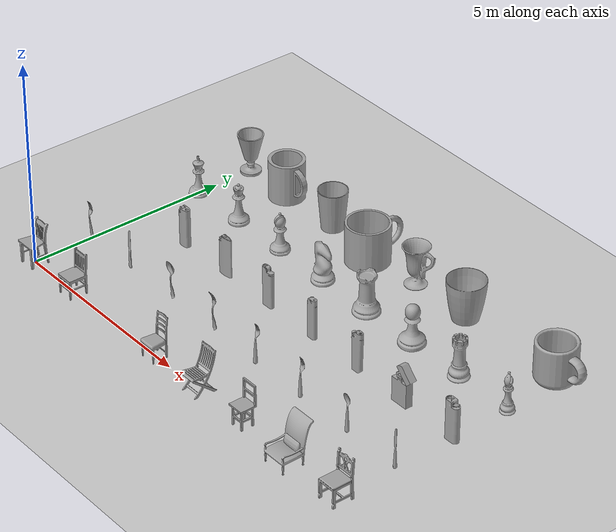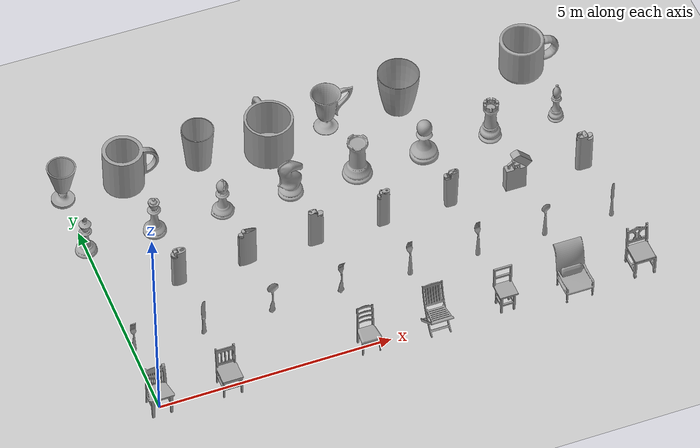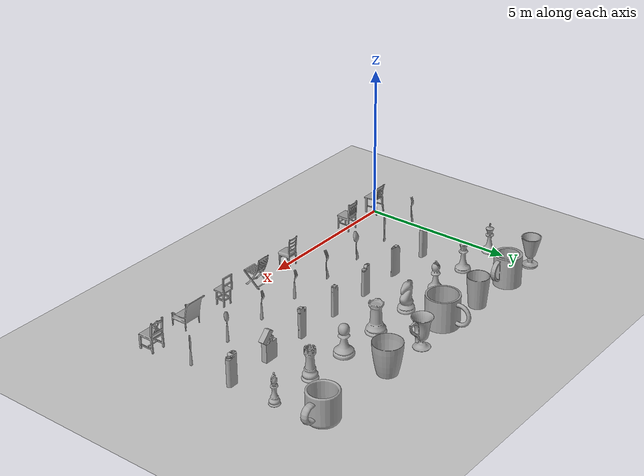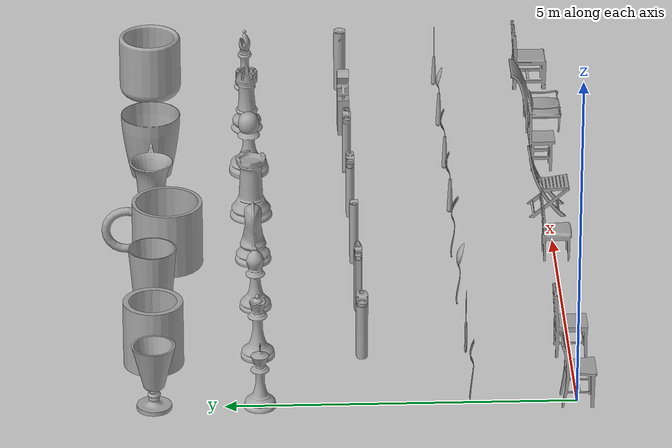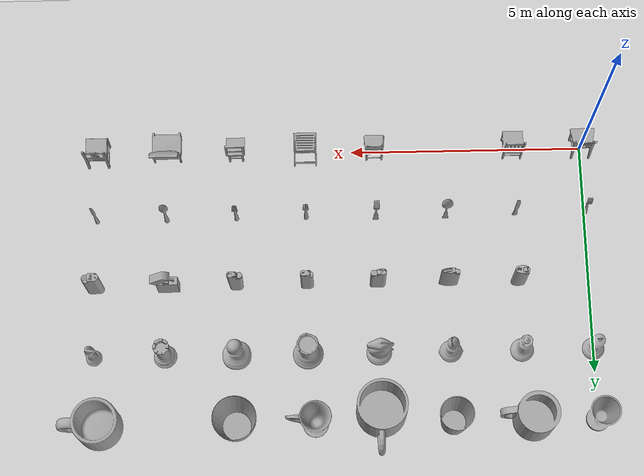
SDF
<sdf version="1.6">
 <world name="default">
  <model name="ground_plane">
   <pose>0 48.5 0 0 -0 0</pose>
   <static>1</static>
   <link name="link">
    <collision name="collision">
     <geometry><plane><normal>0 0 1</normal><size>100 100</size></plane></geometry>
     <surface>
      <contact><collide_bitmask>65535</collide_bitmask></contact>
      <friction><ode><mu>100</mu><mu2>50</mu2></ode></friction>
     </surface>
    </collision>
    <visual name="visual">
     <cast_shadows>0</cast_shadows>
     <geometry><plane><normal>0 0 1</normal><size>100 100</size></plane></geometry>
     <material>
      <script><uri>file://media/materials/scripts/gazebo.material</uri><name>Gazebo/Grey</name></script>
     </material>
    </visual>
   </link>
  </model>
  <gravity>0 0 -9.8</gravity>
  <magnetic_field>6e-06 2.3e-05 -4.2e-05</magnetic_field>
  <atmosphere type="adiabatic"/>
  <physics name="default_physics" default="0" type="ode">
   <max_step_size>0.001</max_step_size>
   <real_time_factor>1</real_time_factor>
   <real_time_update_rate>1000</real_time_update_rate>
  </physics>
  <scene><ambient>0.4 0.4 0.4 1</ambient><background>0.7 0.7 0.7 1</background><shadows>1</shadows></scene>
  <spherical_coordinates>
   <surface_model>EARTH_WGS84</surface_model>
   <latitude_deg>0</latitude_deg>
   <longitude_deg>0</longitude_deg>
   <elevation>0</elevation>
   <heading_deg>0</heading_deg>
  </spherical_coordinates>
  <model name="chair2">
   <pose>1.5 0 0.5 0 -0 0</pose>
   <static>1</static>
   <link name="body">
    <collision name="chair2-coll">
     <pose>0 0 -0.5 0 -0 0</pose>
     <geometry><mesh><uri>model://chair2/meshes/chair2.dae</uri><scale>1 1 1</scale></mesh></geometry>
    </collision>
    <visual name="chair2">
     <geometry><mesh><uri>model://chair2/meshes/chair2.dae</uri><scale>1 1 1</scale></mesh></geometry>
     <pose>0 0 -0.5 0 -0 0</pose>
    </visual>
    <velocity_decay><linear>0</linear><angular>0</angular></velocity_decay>
   </link>
  </model>
  <model name="chair4">
   <pose>4.5 0 0.5 0 -0 0</pose>
   <static>1</static>
   <link name="body">
    <collision name="chair4-coll">
     <pose>0 0 -0.5 0 -0 0</pose>
     <geometry><mesh><uri>model://chair4/meshes/chair4.dae</uri><scale>1 1 1</scale></mesh></geometry>
    </collision>
    <visual name="chair4">
     <geometry><mesh><uri>model://chair4/meshes/chair4.dae</uri><scale>1 1 1</scale></mesh></geometry>
     <pose>0 0 -0.5 0 -0 0</pose>
    </visual>
    <velocity_decay><linear>0</linear><angular>0</angular></velocity_decay>
   </link>
  </model>
  <model name="chair5">
   <pose>6 0 0.5 0 -0 0</pose>
   <static>1</static>
   <link name="body">
    <collision name="chair5-coll">
     <pose>0 0 -0.5 0 -0 0</pose>
     <geometry><mesh><uri>model://chair5/meshes/chair5.dae</uri><scale>1 1 1</scale></mesh></geometry>
    </collision>
    <visual name="chair5">
     <geometry><mesh><uri>model://chair5/meshes/chair5.dae</uri><scale>1 1 1</scale></mesh></geometry>
     <pose>0 0 -0.5 0 -0 0</pose>
    </visual>
    <velocity_decay><linear>0</linear><angular>0</angular></velocity_decay>
   </link>
  </model>
  <model name="chair1">
   <link name="body">
    <velocity_decay><linear>0</linear><angular>0</angular></velocity_decay>
    <inertial>
     <mass>1</mass>
     <inertia><ixx>1</ixx><ixy>0</ixy><ixz>0</ixz><iyy>1</iyy><iyz>0</iyz><izz>1</izz></inertia>
    </inertial>
    <visual name="chair1">
     <geometry><mesh><uri>model://chair1/meshes/chair1.dae</uri><scale>1 1 1</scale></mesh></geometry>
     <pose>0 0 -0.5 0 -0 0</pose>
    </visual>
    <collision name="chair1-coll">
     <pose>0 0 -0.5 0 -0 0</pose>
     <geometry><mesh><uri>model://chair1/meshes/chair1.dae</uri><scale>1 1 1</scale></mesh></geometry>
     <surface>
      <friction>
       <ode><mu>1</mu><mu2>1</mu2><fdir1>0 0 0</fdir1><slip1>0</slip1><slip2>0</slip2></ode>
       <torsional>
        <coefficient>1</coefficient>
        <patch_radius>0</patch_radius>
        <surface_radius>0</surface_radius>
        <use_patch_radius>1</use_patch_radius>
        <ode><slip>0</slip></ode>
       </torsional>
      </friction>
      <bounce><restitution_coefficient>0</restitution_coefficient><threshold>1e+06</threshold></bounce>
      <contact>
       <collide_without_contact>0</collide_without_contact>
       <collide_without_contact_bitmask>1</collide_without_contact_bitmask>
       <collide_bitmask>1</collide_bitmask>
       <ode>
        <soft_cfm>0</soft_cfm>
        <soft_erp>0.2</soft_erp>
        <kp>1e+13</kp>
        <kd>1</kd>
        <max_vel>0.01</max_vel>
        <min_depth>0</min_depth>
       </ode>
       <bullet>
        <split_impulse>1</split_impulse>
        <split_impulse_penetration_threshold>-0.01</split_impulse_penetration_threshold>
        <soft_cfm>0</soft_cfm>
        <soft_erp>0.2</soft_erp>
        <kp>1e+13</kp>
        <kd>1</kd>
       </bullet>
      </contact>
     </surface>
    </collision>
   </link>
   <static>1</static>
   <pose>0 0 0.5 0 -0 0</pose>
  </model>
  <model name="chair6">
   <pose>7.5 0 0.5 0 -0 0</pose>
   <static>1</static>
   <link name="body">
    <collision name="chair6-coll">
     <pose>0 0 -0.5 0 -0 0</pose>
     <geometry><mesh><uri>model://chair6/meshes/chair6.dae</uri><scale>1 1 1</scale></mesh></geometry>
    </collision>
    <visual name="chair6">
     <pose>0 0 -0.5 0 -0 0</pose>
     <geometry><mesh><uri>model://chair6/meshes/chair6.dae</uri><scale>1 1 1</scale></mesh></geometry>
    </visual>
    <velocity_decay><linear>0</linear><angular>0</angular></velocity_decay>
   </link>
  </model>
  <model name="chair7">
   <pose>9 0 0.5 0 -0 0</pose>
   <static>1</static>
   <link name="body">
    <collision name="chair7-coll">
     <pose>0 0 -0.5 0 -0 0</pose>
     <geometry><mesh><uri>model://chair7/meshes/chair7.dae</uri><scale>1 1 1</scale></mesh></geometry>
    </collision>
    <visual name="chair7">
     <pose>0 0 -0.5 0 -0 0</pose>
     <geometry><mesh><uri>model://chair7/meshes/chair7.dae</uri><scale>1 1 1</scale></mesh></geometry>
    </visual>
    <velocity_decay><linear>0</linear><angular>0</angular></velocity_decay>
   </link>
  </model>
  <model name="chair8">
   <pose>10.5 0 0.5 0 -0 0</pose>
   <static>1</static>
   <link name="body">
    <collision name="chair8-coll">
     <pose>0 0 -0.5 0 -0 0</pose>
     <geometry><mesh><uri>model://chair8/meshes/chair8.dae</uri><scale>1 1 1</scale></mesh></geometry>
    </collision>
    <visual name="chair8">
     <pose>0 0 -0.5 0 -0 0</pose>
     <geometry><mesh><uri>model://chair8/meshes/chair8.dae</uri><scale>1 1 1</scale></mesh></geometry>
    </visual>
    <velocity_decay><linear>0</linear><angular>0</angular></velocity_decay>
   </link>
  </model>
  <model name="cutlery1">
   <pose>0 1.5 0.5 0 -0 0</pose>
   <static>1</static>
   <link name="body">
    <collision name="cutlery1-coll">
     <pose>0 0 -0.5 0 -0 0</pose>
     <geometry><mesh><uri>model://cutlery1/meshes/cutlery1.dae</uri><scale>1 1 1</scale></mesh></geometry>
    </collision>
    <visual name="cutlery1">
     <pose>0 0 -0.5 0 -0 0</pose>
     <geometry><mesh><uri>model://cutlery1/meshes/cutlery1.dae</uri><scale>1 1 1</scale></mesh></geometry>
    </visual>
    <velocity_decay><linear>0</linear><angular>0</angular></velocity_decay>
   </link>
  </model>
  <model name="cutlery2">
   <pose>1.5 1.5 0.5 0 -0 0</pose>
   <static>1</static>
   <link name="body">
    <collision name="cutlery2-coll">
     <pose>0 0 -0.5 0 -0 0</pose>
     <geometry><mesh><uri>model://cutlery2/meshes/cutlery2.dae</uri><scale>1 1 1</scale></mesh></geometry>
    </collision>
    <visual name="cutlery2">
     <pose>0 0 -0.5 0 -0 0</pose>
     <geometry><mesh><uri>model://cutlery2/meshes/cutlery2.dae</uri><scale>1 1 1</scale></mesh></geometry>
    </visual>
    <velocity_decay><linear>0</linear><angular>0</angular></velocity_decay>
   </link>
  </model>
  <model name="cutlery3">
   <pose>3 1.5 0.5 0 -0 0</pose>
   <static>1</static>
   <link name="body">
    <collision name="cutlery3-coll">
     <pose>0 0 -0.5 0 -0 0</pose>
     <geometry><mesh><uri>model://cutlery3/meshes/cutlery3.dae</uri><scale>1 1 1</scale></mesh></geometry>
    </collision>
    <visual name="cutlery3">
     <pose>0 0 -0.5 0 -0 0</pose>
     <geometry><mesh><uri>model://cutlery3/meshes/cutlery3.dae</uri><scale>1 1 1</scale></mesh></geometry>
    </visual>
    <velocity_decay><linear>0</linear><angular>0</angular></velocity_decay>
   </link>
  </model>
  <model name="cutlery4">
   <pose>4.5 1.5 0.5 0 -0 0</pose>
   <static>1</static>
   <link name="body">
    <collision name="cutlery4-coll">
     <pose>0 0 -0.5 0 -0 0</pose>
     <geometry><mesh><uri>model://cutlery4/meshes/cutlery4.dae</uri><scale>1 1 1</scale></mesh></geometry>
    </collision>
    <visual name="cutlery4">
     <pose>0 0 -0.5 0 -0 0</pose>
     <geometry><mesh><uri>model://cutlery4/meshes/cutlery4.dae</uri><scale>1 1 1</scale></mesh></geometry>
    </visual>
    <velocity_decay><linear>0</linear><angular>0</angular></velocity_decay>
   </link>
  </model>
  <model name="cutlery5">
   <pose>6 1.5 0.5 0 -0 0</pose>
   <static>1</static>
   <link name="body">
    <collision name="cutlery5-coll">
     <pose>0 0 -0.5 0 -0 0</pose>
     <geometry><mesh><uri>model://cutlery5/meshes/cutlery5.dae</uri><scale>1 1 1</scale></mesh></geometry>
    </collision>
    <visual name="cutlery5">
     <pose>0 0 -0.5 0 -0 0</pose>
     <geometry><mesh><uri>model://cutlery5/meshes/cutlery5.dae</uri><scale>1 1 1</scale></mesh></geometry>
    </visual>
    <velocity_decay><linear>0</linear><angular>0</angular></velocity_decay>
   </link>
  </model>
  <model name="cutlery6">
   <pose>7.5 1.5 0.5 0 -0 0</pose>
   <static>1</static>
   <link name="body">
    <collision name="cutlery6-coll">
     <pose>0 0 -0.5 0 -0 0</pose>
     <geometry><mesh><uri>model://cutlery6/meshes/cutlery6.dae</uri><scale>1 1 1</scale></mesh></geometry>
    </collision>
    <visual name="cutlery6">
     <pose>0 0 -0.5 0 -0 0</pose>
     <geometry><mesh><uri>model://cutlery6/meshes/cutlery6.dae</uri><scale>1 1 1</scale></mesh></geometry>
    </visual>
    <velocity_decay><linear>0</linear><angular>0</angular></velocity_decay>
   </link>
  </model>
  <model name="cutlery7">
   <pose>9 1.5 0.5 0 -0 0</pose>
   <static>1</static>
   <link name="body">
    <collision name="cutlery7-coll">
     <pose>0 0 -0.5 0 -0 0</pose>
     <geometry><mesh><uri>model://cutlery7/meshes/cutlery7.dae</uri><scale>1 1 1</scale></mesh></geometry>
    </collision>
    <visual name="cutlery7">
     <pose>0 0 -0.5 0 -0 0</pose>
     <geometry><mesh><uri>model://cutlery7/meshes/cutlery7.dae</uri><scale>1 1 1</scale></mesh></geometry>
    </visual>
    <velocity_decay><linear>0</linear><angular>0</angular></velocity_decay>
   </link>
  </model>
  <model name="cutlery8">
   <pose>10.5 1.5 0.5 0 -0 0</pose>
   <static>1</static>
   <link name="body">
    <collision name="cutlery8-coll">
     <pose>0 0 -0.5 0 -0 0</pose>
     <geometry><mesh><uri>model://cutlery8/meshes/cutlery8.dae</uri><scale>1 1 1</scale></mesh></geometry>
    </collision>
    <visual name="cutlery8">
     <pose>0 0 -0.5 0 -0 0</pose>
     <geometry><mesh><uri>model://cutlery8/meshes/cutlery8.dae</uri><scale>1 1 1</scale></mesh></geometry>
    </visual>
    <velocity_decay><linear>0</linear><angular>0</angular></velocity_decay>
   </link>
  </model>
  <model name="lighter2">
   <pose>1.5 3 0.5 0 -0 0</pose>
   <static>1</static>
   <link name="body">
    <collision name="lighter2-coll">
     <pose>0 0 -0.5 0 -0 0</pose>
     <geometry><mesh><uri>model://lighter2/meshes/lighter2.dae</uri><scale>1 1 1</scale></mesh></geometry>
    </collision>
    <visual name="lighter2">
     <pose>0 0 -0.5 0 -0 0</pose>
     <geometry><mesh><uri>model://lighter2/meshes/lighter2.dae</uri><scale>1 1 1</scale></mesh></geometry>
    </visual>
    <velocity_decay><linear>0</linear><angular>0</angular></velocity_decay>
   </link>
  </model>
  <model name="lighter3">
   <pose>3 3 0.5 0 -0 0</pose>
   <static>1</static>
   <link name="body">
    <collision name="lighter3-coll">
     <pose>0 0 -0.5 0 -0 0</pose>
     <geometry><mesh><uri>model://lighter3/meshes/lighter3.dae</uri><scale>1 1 1</scale></mesh></geometry>
    </collision>
    <visual name="lighter3">
     <pose>0 0 -0.5 0 -0 0</pose>
     <geometry><mesh><uri>model://lighter3/meshes/lighter3.dae</uri><scale>1 1 1</scale></mesh></geometry>
    </visual>
    <velocity_decay><linear>0</linear><angular>0</angular></velocity_decay>
   </link>
  </model>
  <model name="lighter4">
   <pose>4.5 3 0.5 0 -0 0</pose>
   <static>1</static>
   <link name="body">
    <collision name="lighter4-coll">
     <pose>0 0 -0.5 0 -0 0</pose>
     <geometry><mesh><uri>model://lighter4/meshes/lighter4.dae</uri><scale>1 1 1</scale></mesh></geometry>
    </collision>
    <visual name="lighter4">
     <pose>0 0 -0.5 0 -0 0</pose>
     <geometry><mesh><uri>model://lighter4/meshes/lighter4.dae</uri><scale>1 1 1</scale></mesh></geometry>
    </visual>
    <velocity_decay><linear>0</linear><angular>0</angular></velocity_decay>
   </link>
  </model>
  <model name="lighter5">
   <pose>6 3 0.5 0 -0 0</pose>
   <static>1</static>
   <link name="body">
    <collision name="lighter5-coll">
     <pose>0 0 -0.5 0 -0 0</pose>
     <geometry><mesh><uri>model://lighter5/meshes/lighter5.dae</uri><scale>1 1 1</scale></mesh></geometry>
    </collision>
    <visual name="lighter5">
     <pose>0 0 -0.5 0 -0 0</pose>
     <geometry><mesh><uri>model://lighter5/meshes/lighter5.dae</uri><scale>1 1 1</scale></mesh></geometry>
    </visual>
    <velocity_decay><linear>0</linear><angular>0</angular></velocity_decay>
   </link>
  </model>
  <model name="lighter6">
   <pose>7.5 3 0.5 0 -0 0</pose>
   <static>1</static>
   <link name="body">
    <collision name="lighter6-coll">
     <pose>0 0 -0.5 0 -0 0</pose>
     <geometry><mesh><uri>model://lighter6/meshes/lighter6.dae</uri><scale>1 1 1</scale></mesh></geometry>
    </collision>
    <visual name="lighter6">
     <pose>0 0 -0.5 0 -0 0</pose>
     <geometry><mesh><uri>model://lighter6/meshes/lighter6.dae</uri><scale>1 1 1</scale></mesh></geometry>
    </visual>
    <velocity_decay><linear>0</linear><angular>0</angular></velocity_decay>
   </link>
  </model>
  <model name="lighter7">
   <pose>9 3 0.5 0 -0 0</pose>
   <static>1</static>
   <link name="body">
    <collision name="lighter7-coll">
     <pose>0 0 -0.5 0 -0 0</pose>
     <geometry><mesh><uri>model://lighter7/meshes/lighter7.dae</uri><scale>1 1 1</scale></mesh></geometry>
    </collision>
    <visual name="lighter7">
     <pose>0 0 -0.5 0 -0 0</pose>
     <geometry><mesh><uri>model://lighter7/meshes/lighter7.dae</uri><scale>1 1 1</scale></mesh></geometry>
    </visual>
    <velocity_decay><linear>0</linear><angular>0</angular></velocity_decay>
   </link>
  </model>
  <model name="lighter8">
   <pose>10.5 3 0.5 0 -0 0</pose>
   <static>1</static>
   <link name="body">
    <collision name="lighter8-coll">
     <pose>0 0 -0.5 0 -0 0</pose>
     <geometry><mesh><uri>model://lighter8/meshes/lighter8.dae</uri><scale>1 1 1</scale></mesh></geometry>
    </collision>
    <visual name="lighter8">
     <pose>0 0 -0.5 0 -0 0</pose>
     <geometry><mesh><uri>model://lighter8/meshes/lighter8.dae</uri><scale>1 1 1</scale></mesh></geometry>
    </visual>
    <velocity_decay><linear>0</linear><angular>0</angular></velocity_decay>
   </link>
  </model>
  <model name="chess1">
   <pose>0 4.5 0.5 0 -0 0</pose>
   <static>1</static>
   <link name="body">
    <collision name="chess1-coll">
     <pose>0 0 -0.5 0 -0 0</pose>
     <geometry><mesh><uri>model://chess1/meshes/chess1.dae</uri><scale>1 1 1</scale></mesh></geometry>
    </collision>
    <visual name="chess1">
     <pose>0 0 -0.5 0 -0 0</pose>
     <geometry><mesh><uri>model://chess1/meshes/chess1.dae</uri><scale>1 1 1</scale></mesh></geometry>
    </visual>
    <velocity_decay><linear>0</linear><angular>0</angular></velocity_decay>
   </link>
  </model>
  <model name="chess2">
   <pose>1.5 4.5 0.5 0 -0 0</pose>
   <static>1</static>
   <link name="body">
    <collision name="chess2-coll">
     <pose>0 0 -0.5 0 -0 0</pose>
     <geometry><mesh><uri>model://chess2/meshes/chess2.dae</uri><scale>1 1 1</scale></mesh></geometry>
    </collision>
    <visual name="chess2">
     <pose>0 0 -0.5 0 -0 0</pose>
     <geometry><mesh><uri>model://chess2/meshes/chess2.dae</uri><scale>1 1 1</scale></mesh></geometry>
    </visual>
    <velocity_decay><linear>0</linear><angular>0</angular></velocity_decay>
   </link>
  </model>
  <model name="chess3">
   <pose>3 4.5 0.5 0 -0 0</pose>
   <static>1</static>
   <link name="body">
    <collision name="chess3-coll">
     <pose>0 0 -0.5 0 -0 0</pose>
     <geometry><mesh><uri>model://chess3/meshes/chess3.dae</uri><scale>1 1 1</scale></mesh></geometry>
    </collision>
    <visual name="chess3">
     <pose>0 0 -0.5 0 -0 0</pose>
     <geometry><mesh><uri>model://chess3/meshes/chess3.dae</uri><scale>1 1 1</scale></mesh></geometry>
    </visual>
    <velocity_decay><linear>0</linear><angular>0</angular></velocity_decay>
   </link>
  </model>
  <model name="chess4">
   <pose>4.5 4.5 0.5 0 -0 0</pose>
   <static>1</static>
   <link name="body">
    <collision name="chess4-coll">
     <pose>0 0 -0.5 0 -0 0</pose>
     <geometry><mesh><uri>model://chess4/meshes/chess4.dae</uri><scale>1 1 1</scale></mesh></geometry>
    </collision>
    <visual name="chess4">
     <pose>0 0 -0.5 0 -0 0</pose>
     <geometry><mesh><uri>model://chess4/meshes/chess4.dae</uri><scale>1 1 1</scale></mesh></geometry>
    </visual>
    <velocity_decay><linear>0</linear><angular>0</angular></velocity_decay>
   </link>
  </model>
  <model name="chess5">
   <pose>6 4.5 0.5 0 -0 0</pose>
   <static>1</static>
   <link name="body">
    <collision name="chess5-coll">
     <pose>0 0 -0.5 0 -0 0</pose>
     <geometry><mesh><uri>model://chess5/meshes/chess5.dae</uri><scale>1 1 1</scale></mesh></geometry>
    </collision>
    <visual name="chess5">
     <pose>0 0 -0.5 0 -0 0</pose>
     <geometry><mesh><uri>model://chess5/meshes/chess5.dae</uri><scale>1 1 1</scale></mesh></geometry>
    </visual>
    <velocity_decay><linear>0</linear><angular>0</angular></velocity_decay>
   </link>
  </model>
  <model name="chess6">
   <pose>7.5 4.5 0.5 0 -0 0</pose>
   <static>1</static>
   <link name="body">
    <collision name="chess6-coll">
     <pose>0 0 -0.5 0 -0 0</pose>
     <geometry><mesh><uri>model://chess6/meshes/chess6.dae</uri><scale>1 1 1</scale></mesh></geometry>
    </collision>
    <visual name="chess6">
     <pose>0 0 -0.5 0 -0 0</pose>
     <geometry><mesh><uri>model://chess6/meshes/chess6.dae</uri><scale>1 1 1</scale></mesh></geometry>
    </visual>
    <velocity_decay><linear>0</linear><angular>0</angular></velocity_decay>
   </link>
  </model>
  <model name="chess7">
   <pose>9 4.5 0.5 0 -0 0</pose>
   <static>1</static>
   <link name="body">
    <collision name="chess7-coll">
     <pose>0 0 -0.5 0 -0 0</pose>
     <geometry><mesh><uri>model://chess7/meshes/chess7.dae</uri><scale>1 1 1</scale></mesh></geometry>
    </collision>
    <visual name="chess7">
     <pose>0 0 -0.5 0 -0 0</pose>
     <geometry><mesh><uri>model://chess7/meshes/chess7.dae</uri><scale>1 1 1</scale></mesh></geometry>
    </visual>
    <velocity_decay><linear>0</linear><angular>0</angular></velocity_decay>
   </link>
  </model>
  <model name="chess8">
   <pose>10.5 4.5 0.5 0 -0 0</pose>
   <static>1</static>
   <link name="body">
    <collision name="chess8-coll">
     <pose>0 0 -0.5 0 -0 0</pose>
     <geometry><mesh><uri>model://chess8/meshes/chess8.dae</uri><scale>1 1 1</scale></mesh></geometry>
    </collision>
    <visual name="chess8">
     <pose>0 0 -0.5 0 -0 0</pose>
     <geometry><mesh><uri>model://chess8/meshes/chess8.dae</uri><scale>1 1 1</scale></mesh></geometry>
    </visual>
    <velocity_decay><linear>0</linear><angular>0</angular></velocity_decay>
   </link>
  </model>
  <model name="cup1">
   <pose>0 6 0.5 0 -0 0</pose>
   <static>1</static>
   <link name="body">
    <collision name="cup1-coll">
     <pose>0 0 -0.5 0 -0 0</pose>
     <geometry><mesh><uri>model://cup1/meshes/cup1.dae</uri><scale>1 1 1</scale></mesh></geometry>
    </collision>
    <visual name="cup1">
     <pose>0 0 -0.5 0 -0 0</pose>
     <geometry><mesh><uri>model://cup1/meshes/cup1.dae</uri><scale>1 1 1</scale></mesh></geometry>
    </visual>
    <velocity_decay><linear>0</linear><angular>0</angular></velocity_decay>
   </link>
  </model>
  <model name="cup2">
   <pose>1.5 6 0.5 0 -0 0</pose>
   <static>1</static>
   <link name="body">
    <collision name="cup2-coll">
     <pose>0 0 -0.5 0 -0 0</pose>
     <geometry><mesh><uri>model://cup2/meshes/cup2.dae</uri><scale>1 1 1</scale></mesh></geometry>
    </collision>
    <visual name="cup2">
     <pose>0 0 -0.5 0 -0 0</pose>
     <geometry><mesh><uri>model://cup2/meshes/cup2.dae</uri><scale>1 1 1</scale></mesh></geometry>
    </visual>
    <velocity_decay><linear>0</linear><angular>0</angular></velocity_decay>
   </link>
  </model>
  <model name="cup3">
   <pose>3 6 0.5 0 -0 0</pose>
   <static>1</static>
   <link name="body">
    <collision name="cup3-coll">
     <pose>0 0 -0.5 0 -0 0</pose>
     <geometry><mesh><uri>model://cup3/meshes/cup3.dae</uri><scale>1 1 1</scale></mesh></geometry>
    </collision>
    <visual name="cup3">
     <pose>0 0 -0.5 0 -0 0</pose>
     <geometry><mesh><uri>model://cup3/meshes/cup3.dae</uri><scale>1 1 1</scale></mesh></geometry>
    </visual>
    <velocity_decay><linear>0</linear><angular>0</angular></velocity_decay>
   </link>
  </model>
  <model name="cup4">
   <pose>4.5 6 0.5 0 -0 0</pose>
   <static>1</static>
   <link name="body">
    <collision name="cup4-coll">
     <pose>0 0 -0.5 0 -0 0</pose>
     <geometry><mesh><uri>model://cup4/meshes/cup4.dae</uri><scale>1 1 1</scale></mesh></geometry>
    </collision>
    <visual name="cup4">
     <pose>0 0 -0.5 0 -0 0</pose>
     <geometry><mesh><uri>model://cup4/meshes/cup4.dae</uri><scale>1 1 1</scale></mesh></geometry>
    </visual>
    <velocity_decay><linear>0</linear><angular>0</angular></velocity_decay>
   </link>
  </model>
  <model name="cup5">
   <pose>6 6 0.5 0 -0 0</pose>
   <static>1</static>
   <link name="body">
    <collision name="cup5-coll">
     <pose>0 0 -0.5 0 -0 0</pose>
     <geometry><mesh><uri>model://cup5/meshes/cup5.dae</uri><scale>1 1 1</scale></mesh></geometry>
    </collision>
    <visual name="cup5">
     <pose>0 0 -0.5 0 -0 0</pose>
     <geometry><mesh><uri>model://cup5/meshes/cup5.dae</uri><scale>1 1 1</scale></mesh></geometry>
    </visual>
    <velocity_decay><linear>0</linear><angular>0</angular></velocity_decay>
   </link>
  </model>
  <model name="cup6">
   <pose>7.5 6 0.5 0 -0 0</pose>
   <static>1</static>
   <link name="body">
    <collision name="cup6-coll">
     <pose>0 0 -0.5 0 -0 0</pose>
     <geometry><mesh><uri>model://cup6/meshes/cup6.dae</uri><scale>1 1 1</scale></mesh></geometry>
    </collision>
    <visual name="cup6">
     <pose>0 0 -0.5 0 -0 0</pose>
     <geometry><mesh><uri>model://cup6/meshes/cup6.dae</uri><scale>1 1 1</scale></mesh></geometry>
    </visual>
    <velocity_decay><linear>0</linear><angular>0</angular></velocity_decay>
   </link>
  </model>
  <model name="cup8">
   <pose>10.5 6 0.5 0 -0 0</pose>
   <static>1</static>
   <link name="body">
    <collision name="cup8-coll">
     <pose>0 0 -0.5 0 -0 0</pose>
     <geometry><mesh><uri>model://cup8/meshes/cup8.dae</uri><scale>1 1 1</scale></mesh></geometry>
    </collision>
    <visual name="cup8">
     <pose>0 0 -0.5 0 -0 0</pose>
     <geometry><mesh><uri>model://cup8/meshes/cup8.dae</uri><scale>1 1 1</scale></mesh></geometry>
    </visual>
    <velocity_decay><linear>0</linear><angular>0</angular></velocity_decay>
   </link>
  </model>
  <light name="user_spot_light_0" type="spot">
   <pose>5.35325 3.18889 1 0 -0 0</pose>
   <diffuse>0.5 0.5 0.5 1</diffuse>
   <specular>0.1 0.1 0.1 1</specular>
   <direction>0 0 -1</direction>
   <attenuation>
    <range>20</range>
    <constant>0.5</constant>
    <linear>0.01</linear>
    <quadratic>0.001</quadratic>
   </attenuation>
   <cast_shadows>0</cast_shadows>
   <spot><inner_angle>0.6</inner_angle><outer_angle>1</outer_angle><falloff>1</falloff></spot>
  </light>
  <light name="user_spot_light_1" type="spot">
   <pose>0.056276 -1.13564 1 0 -0 0</pose>
   <diffuse>0.5 0.5 0.5 1</diffuse>
   <specular>0.1 0.1 0.1 1</specular>
   <direction>0 0 -1</direction>
   <attenuation>
    <range>20</range>
    <constant>0.5</constant>
    <linear>0.01</linear>
    <quadratic>0.001</quadratic>
   </attenuation>
   <cast_shadows>0</cast_shadows>
   <spot><inner_angle>0.6</inner_angle><outer_angle>1</outer_angle><falloff>1</falloff></spot>
  </light>
  <light name="user_spot_light_2" type="spot">
   <pose>-2.47966 4.51552 1 0 -0 0</pose>
   <diffuse>0.5 0.5 0.5 1</diffuse>
   <specular>0.1 0.1 0.1 1</specular>
   <direction>0 0 -1</direction>
   <attenuation>
    <range>20</range>
    <constant>0.5</constant>
    <linear>0.01</linear>
    <quadratic>0.001</quadratic>
   </attenuation>
   <cast_shadows>0</cast_shadows>
   <spot><inner_angle>0.6</inner_angle><outer_angle>1</outer_angle><falloff>1</falloff></spot>
  </light>
 </world>
</sdf>
